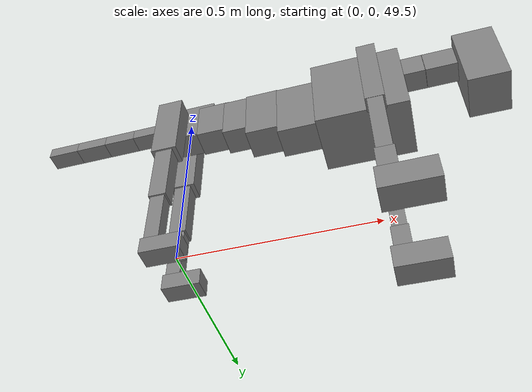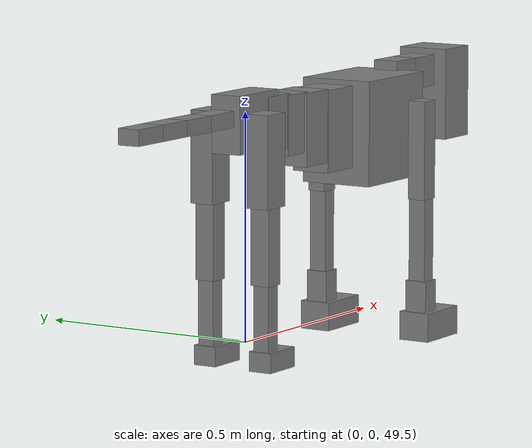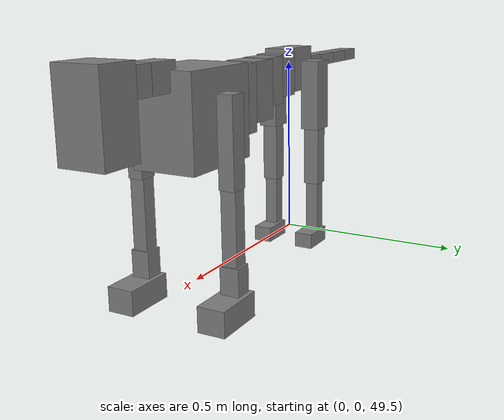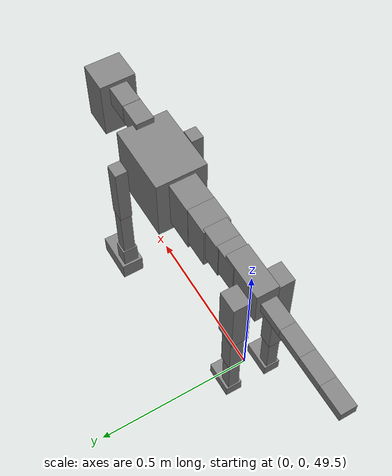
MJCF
<mujoco model="dog">

    <default>
        <joint armature="0.02" stiffness="1" damping="0.2" limited="true"/>
        <geom condim="3" friction="1 0.05 0.05" margin="0.01"/>
        <motor ctrllimited="true" ctrlrange="-1.0 1.0" forcelimited="true" gear="50"/>
    </default>

    <compiler inertiafromgeom="true" angle="radian"/>

    <option timestep="0.016" iterations="50" tolerance="1e-10" solver="Newton" jacobian="dense" cone="pyramidal"/>

    <size nconmax="20000" njmax="60000" nstack="5000000"/>
    <visual>
        <map force="0.1" zfar="30"/>
        <rgba haze="0.15 0.25 0.35 1"/>
        <quality shadowsize="2048"/>
        <global offwidth="800" offheight="800"/>
    </visual>

    <asset>
        <texture type="skybox" builtin="gradient" rgb1="0.3 0.5 0.7" rgb2="0 0 0" width="512" height="512"/>
        <texture name="texplane" type="2d" builtin="checker" rgb1=".2 .3 .4" rgb2=".1 0.15 0.2" width="512" height="512"
                 mark="cross" markrgb=".8 .8 .8"/>
        <texture name="texgeom" type="cube" builtin="flat" mark="cross" width="127" height="1278" rgb1="0.8 0.6 0.4"
                 rgb2="0.8 0.6 0.4" markrgb="1 1 1" random="0.01"/>

        <material name="matplane" reflectance="0.3" texture="texplane" texrepeat="1 1" texuniform="true"/>
        <material name="matgeom" texture="texgeom" texuniform="true" rgba="0.8 0.6 .4 1"/>
    </asset>

    <worldbody>
        <geom name="floor" pos="0 0 0" size="0 0 .25" type="plane" material="matplane" condim="3"/>

        <light directional="false" diffuse=".2 .2 .2" specular="0 0 0" pos="0 0 5" dir="0 0 -1" castshadow="false"/>
        <light mode="targetbodycom" target="torso" directional="false" diffuse=".8 .8 .8" specular="0.3 0.3 0.3"
               pos="0 0 4.0" dir="0 0 -1"/>

        <body name="root" pos="0 0 50">
            <freejoint name="root_1"/>
            <geom type="box" pos="0 0 -0.02" size="0.0774  0.0358  0.063" density="2030"/>

            <body name="spine1" pos="0.054 0 0">
                <joint name="spine1_y" axis="0 1 0" range="0 0.7" limited="true"/>
                <geom type="box" pos="0.02375 0 -0.03" size="0.04375  0.0375  0.05985" density="2030"/>

                <body name="spine2" pos="0.0612 0 0">
                    <joint name="spine2_y" axis="0 1 0" range="-0.15 0.15" limited="true"/>
                    <geom type="box" pos="0.03555  0  -0.04" size="0.04055  0.039  0.06615" density="2030"/>

                    <body name="spine3" pos="0.0730 0 0">
                        <joint name="spine3_y" axis="0 1 0" range="-0.15 0.15" limited="true"/>
                        <geom type="box" pos="0.03555  0  -0.057" size="0.04555  0.0445  0.081" density="2030"/>

                        <body name="spine4" pos="0.0780 0 0">
                            <joint name="spine4_y" axis="0 1 0" range="-0.15 0.15" limited="true"/>
                            <geom type="box" pos="0.05265  0  -0.07" size="0.05265  0.045  0.09135" density="2030"/>

                            <body name="torso" pos="0.1082 0 0">
                                <joint name="torso_y" axis="0 1 0" range="-0.15 0.15" limited="true"/>
                                <geom type="box" pos="0.11925  0  -0.085" size="0.11925  0.085  0.11745"
                                      density="2030"/>

                                <body name="neck1" pos="0.2160  0   0.0180">
                                    <joint name="neck1_y" axis="0 1 0" range="-1.2  -1" limited="true"/>
                                    <geom type="box" pos="0.0423  0  0" size="0.0423  0.03  0.036" density="2325"/>

                                    <body name="neck2" pos="0.0853  0  0">
                                        <joint name="neck2_y" axis="0 1 0" range="0.1  0" limited="true"/>
                                        <geom type="box" pos="0.0423  0  0" size="0.0423  0.03  0.036" density="2325"/>

                                        <body name="head" pos="0.0853  0  0">
                                            <joint name="head_y" axis="0 1 0" range="-0.3  -0.2" limited="true"/>
                                            <geom type="box" pos="0.0531  0  -0.055" size="0.0531  0.06  0.1044"
                                                  density="4030"/>

                                        </body>
                                    </body>
                                </body>

                                <body name="front_shoulder" pos="0.156  0   -0.0480">
                                    <joint name="front_shoulder_y" axis="0 1 0" range="-1 1.5" limited="true"/>
                                    <geom type="box" pos="0 0.13 -0.0844" size="0.0241  0.0206  0.1110" density="1158"/>
                                    <geom type="box" pos="0 -0.13 -0.0844" size="0.0241  0.0206  0.1110"
                                          density="1158"/>

                                    <body name="front_elbow" pos="0  0  -0.1687">
                                        <joint name="front_elbow_y" axis="0 1 0" range="-2 0" limited="true"/>
                                        <geom type="box" pos="0 0.13 -0.1121" size="0.0194  0.0199  0.1121"
                                              density="1081"/>
                                        <geom type="box" pos="0 -0.13 -0.1121" size="0.0194  0.0199  0.1121"
                                              density="1081"/>

                                        <body name="front_wrist" pos="0  0  -0.2243">
                                            <joint name="front_wrist_y" axis="0 1 0" range="-0.2 0" limited="true"/>
                                            <geom type="box" pos="0 0.13 -0.0362" size="0.0229  0.0254  0.0494"
                                                  density="1664"/>
                                            <geom type="box" pos="0 -0.13 -0.0362" size="0.0229  0.0254  0.0494"
                                                  density="1664"/>

                                            <body name="front_finger_end" pos="0  0  -0.0724">
                                                <joint name="front_finger_y" axis="0 1 0" range="-0.4 1"
                                                       limited="true"/>
                                                <geom type="box" pos="0.0366  0.13  -0.0174"
                                                      size="0.0671  0.0366  0.0324" density="1515"/>
                                                <geom type="box" pos="0.0366  -0.13  -0.0174"
                                                      size="0.0671  0.0366  0.0324" density="1515"/>

                                            </body>

                                        </body>
                                    </body>
                                </body>

                            </body>
                        </body>
                    </body>
                </body>
            </body>

            <body name="back_hip" pos="-0.03 0 -0.018">
                <joint name="back_hip_y" axis="0 1 0" range="-1.5 0.3" limited="true"/>
                <geom type="box" pos="0 0.07 -0.0779" size="0.0345  0.0271  0.1007" density="1154"/>
                <geom type="box" pos="0 -0.07 -0.0779" size="0.0345  0.0271  0.1007" density="1154"/>

                <body name="back_knee" pos="0  0  -0.1558">
                    <joint name="back_knee_y" axis="0 1 0" range="0 2.8" limited="true"/>
                    <geom type="box" pos="0 0.07 -0.0872" size="0.0228  0.0225  0.1027" density="1227"/>
                    <geom type="box" pos="0 -0.07 -0.0872" size="0.0228  0.0225  0.1027" density="1227"/>

                    <body name="back_ankle" pos="0  0  -0.1743">
                        <joint name="back_ankle_y" axis="0 1 0" range="-2.2 0" limited="true"/>
                        <geom type="box" pos="0 0.07 -0.0866" size="0.0186  0.0186  0.0979" density="1284"/>
                        <geom type="box" pos="0 -0.07 -0.0866" size="0.0186  0.0186  0.0979" density="1284"/>

                        <body name="back_toe_end" pos="0  0  -0.1732">
                            <joint name="back_toe_y" axis="0 1 0" range="-0.4 1" limited="true"/>
                            <geom type="box" pos="0.0268  0.07  -0.0068" size="0.0491  0.0268  0.0218" density="1515"/>
                            <geom type="box" pos="0.0268  -0.07  -0.0068" size="0.0491  0.0268  0.0218" density="1515"/>

                        </body>
                    </body>
                </body>
            </body>

            <body name="tail1" pos="-0.074 0 -0.006">
                <joint name="tail1_y" axis="0 1 0" range="-0.2 0.2" limited="true"/>
                <geom type="box" pos="-0.0536  0  0" size="0.045  0.025  0.0175" density="1587"/>

                <body name="tail2" pos="-0.09 0 0">
                    <joint name="tail2_y" axis="0 1 0" range="-0.2 0.2" limited="true"/>
                    <geom type="box" pos="-0.0536  0  0" size="0.045  0.025  0.0175" density="1587"/>

                    <body name="tail3" pos="-0.09 0 0">
                        <joint name="tail3_y" axis="0 1 0" range="-0.2 0.2" limited="true"/>
                        <geom type="box" pos="-0.0536  0  0" size="0.045  0.025  0.0175" density="1587"/>

                        <body name="tail4" pos="-0.09 0 0">
                            <joint name="tail4_y" axis="0 1 0" range="-0.2 0.2" limited="true"/>
                            <geom type="box" pos="-0.0536  0  0" size="0.045  0.025  0.0175" density="1587"/>

                        </body>
                    </body>
                </body>
            </body>
        </body>
    </worldbody>

    <actuator>
        <motor joint="spine1_y" forcerange="-150 150     "/>
        <motor joint="spine2_y" forcerange="-150 150     "/>
        <motor joint="spine3_y" forcerange="-150 150     "/>
        <motor joint="spine4_y" forcerange="-150 150     "/>
        <motor joint="torso_y" forcerange="-150 150     "/>
        <motor joint="neck1_y" forcerange="-100 100       "/>
        <motor joint="neck2_y" forcerange="-100 100       "/>
        <motor joint="head_y" forcerange="-150 150       "/>
        <motor joint="front_shoulder_y" forcerange="-122.94 114.35"/>
        <motor joint="front_elbow_y" forcerange="-126.01 118.37"/>
        <motor joint="front_wrist_y" forcerange="-60.80 142.64"/>
        <motor joint="front_finger_y" forcerange="-82.79 72.48"/>
        <motor joint="back_hip_y" forcerange="-318.93 242.10"/>
        <motor joint="back_knee_y" forcerange="-267.08 260.18"/>
        <motor joint="back_angle_y" forcerange="-95.62 101.60"/>
        <motor joint="back_toe_y" forcerange="-51.47 82.97"/>
        <motor joint="tail1_y" forcerange="-50 50     "/>
        <motor joint="tail2_y" forcerange="-50 50     "/>
        <motor joint="tail3_y" forcerange="-50 50     "/>
        <motor joint="tail4_y" forcerange="-50 50     "/>
    </actuator>
</mujoco>
